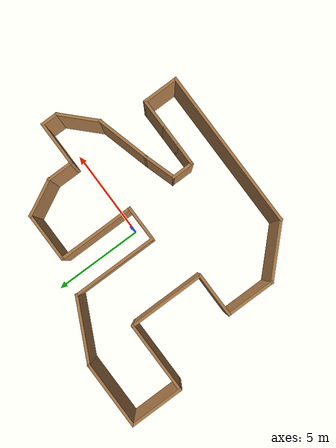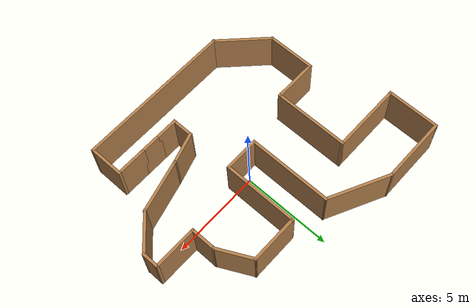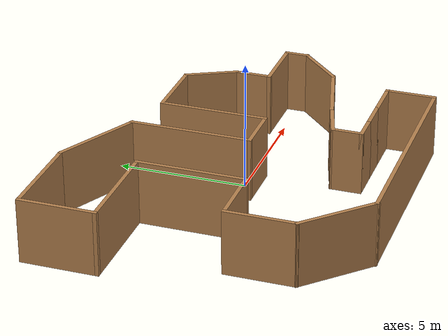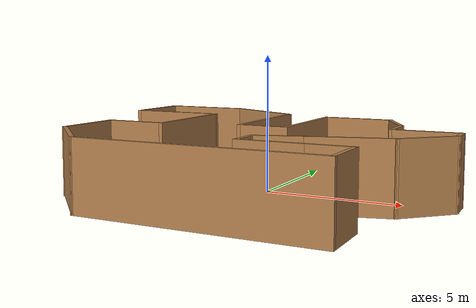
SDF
<?xml version='1.0'?>
<sdf version='1.7'>
  <model name='my_own_map_v1'>
    <pose>-0.401301 -0.201684 0 0 -0 0</pose>
    <link name='Wall_27'>
      <collision name='Wall_27_Collision'>
        <geometry>
          <box>
            <size>3 0.15 2.5</size>
          </box>
        </geometry>
        <pose>0 0 1.25 0 -0 0</pose>
      </collision>
      <visual name='Wall_27_Visual'>
        <pose>0 0 1.25 0 -0 0</pose>
        <geometry>
          <box>
            <size>3 0.15 2.5</size>
          </box>
        </geometry>
        <material>
          <script>
            <uri>file://media/materials/scripts/gazebo.material</uri>
            <name>Gazebo/Wood</name>
          </script>
          <ambient>1 1 1 1</ambient>
        </material>
        <meta>
          <layer>0</layer>
        </meta>
      </visual>
      <pose>4.25774 -2.0495 0 0 -0 0.261799</pose>
    </link>
    <link name='Wall_30'>
      <collision name='Wall_30_Collision'>
        <geometry>
          <box>
            <size>1 0.15 2.5</size>
          </box>
        </geometry>
        <pose>0 0 1.25 0 -0 0</pose>
      </collision>
      <visual name='Wall_30_Visual'>
        <pose>0 0 1.25 0 -0 0</pose>
        <geometry>
          <box>
            <size>1 0.15 2.5</size>
          </box>
        </geometry>
        <material>
          <script>
            <uri>file://media/materials/scripts/gazebo.material</uri>
            <name>Gazebo/Wood</name>
          </script>
          <ambient>1 1 1 1</ambient>
        </material>
        <meta>
          <layer>0</layer>
        </meta>
      </visual>
      <pose>7.17967 0.258429 0 0 -0 1.5708</pose>
    </link>
    <link name='Wall_31'>
      <collision name='Wall_31_Collision'>
        <geometry>
          <box>
            <size>2.5 0.15 2.5</size>
          </box>
        </geometry>
        <pose>0 0 1.25 0 -0 0</pose>
      </collision>
      <visual name='Wall_31_Visual'>
        <pose>0 0 1.25 0 -0 0</pose>
        <geometry>
          <box>
            <size>2.5 0.15 2.5</size>
          </box>
        </geometry>
        <material>
          <script>
            <uri>file://media/materials/scripts/gazebo.material</uri>
            <name>Gazebo/Wood</name>
          </script>
          <ambient>1 1 1 1</ambient>
        </material>
        <meta>
          <layer>0</layer>
        </meta>
      </visual>
      <pose>6.00467 0.683429 0 0 -0 3.14159</pose>
    </link>
    <link name='Wall_33'>
      <collision name='Wall_33_Collision'>
        <geometry>
          <box>
            <size>1.5 0.15 2.5</size>
          </box>
        </geometry>
        <pose>0 0 1.25 0 -0 0</pose>
      </collision>
      <visual name='Wall_33_Visual'>
        <pose>0 0 1.25 0 -0 0</pose>
        <geometry>
          <box>
            <size>1.5 0.15 2.5</size>
          </box>
        </geometry>
        <material>
          <script>
            <uri>file://media/materials/scripts/gazebo.material</uri>
            <name>Gazebo/Wood</name>
          </script>
          <ambient>1 1 1 1</ambient>
        </material>
        <meta>
          <layer>0</layer>
        </meta>
      </visual>
      <pose>4.82967 1.35843 0 0 -0 1.5708</pose>
    </link>
    <link name='Wall_41'>
      <collision name='Wall_41_Collision'>
        <geometry>
          <box>
            <size>1.25 0.15 2.5</size>
          </box>
        </geometry>
        <pose>0 0 1.25 0 -0 0</pose>
      </collision>
      <visual name='Wall_41_Visual'>
        <pose>0 0 1.25 0 -0 0</pose>
        <geometry>
          <box>
            <size>1.25 0.15 2.5</size>
          </box>
        </geometry>
        <material>
          <script>
            <uri>file://media/materials/scripts/gazebo.material</uri>
            <name>Gazebo/Wood</name>
          </script>
          <ambient>1 1 1 1</ambient>
        </material>
        <meta>
          <layer>0</layer>
        </meta>
      </visual>
      <pose>1.2813 -3.46832 0 0 -0 -1.5708</pose>
    </link>
    <link name='Wall_42'>
      <collision name='Wall_42_Collision'>
        <geometry>
          <box>
            <size>1.25 0.15 2.5</size>
          </box>
        </geometry>
        <pose>0 0 1.25 0 -0 0</pose>
      </collision>
      <visual name='Wall_42_Visual'>
        <pose>0 0 1.25 0 -0 0</pose>
        <geometry>
          <box>
            <size>1.25 0.15 2.5</size>
          </box>
        </geometry>
        <material>
          <script>
            <uri>file://media/materials/scripts/gazebo.material</uri>
            <name>Gazebo/Wood</name>
          </script>
          <ambient>1 1 1 1</ambient>
        </material>
        <meta>
          <layer>0</layer>
        </meta>
      </visual>
      <pose>1.8313 -4.01832 0 0 -0 0</pose>
    </link>
    <link name='Wall_43'>
      <collision name='Wall_43_Collision'>
        <geometry>
          <box>
            <size>1.25 0.15 2.5</size>
          </box>
        </geometry>
        <pose>0 0 1.25 0 -0 0</pose>
      </collision>
      <visual name='Wall_43_Visual'>
        <pose>0 0 1.25 0 -0 0</pose>
        <geometry>
          <box>
            <size>1.25 0.15 2.5</size>
          </box>
        </geometry>
        <material>
          <script>
            <uri>file://media/materials/scripts/gazebo.material</uri>
            <name>Gazebo/Wood</name>
          </script>
          <ambient>1 1 1 1</ambient>
        </material>
        <meta>
          <layer>0</layer>
        </meta>
      </visual>
      <pose>2.9313 -4.01832 0 0 -0 0</pose>
    </link>
    <link name='Wall_44'>
      <collision name='Wall_44_Collision'>
        <geometry>
          <box>
            <size>1.75 0.15 2.5</size>
          </box>
        </geometry>
        <pose>0 0 1.25 0 -0 0</pose>
      </collision>
      <visual name='Wall_44_Visual'>
        <pose>0 0 1.25 0 -0 0</pose>
        <geometry>
          <box>
            <size>1.75 0.15 2.5</size>
          </box>
        </geometry>
        <material>
          <script>
            <uri>file://media/materials/scripts/gazebo.material</uri>
            <name>Gazebo/Wood</name>
          </script>
          <ambient>1 1 1 1</ambient>
        </material>
        <meta>
          <layer>0</layer>
        </meta>
      </visual>
      <pose>4.2813 -4.01832 0 0 -0 0</pose>
    </link>
    <link name='Wall_45'>
      <collision name='Wall_45_Collision'>
        <geometry>
          <box>
            <size>2 0.15 2.5</size>
          </box>
        </geometry>
        <pose>0 0 1.25 0 -0 0</pose>
      </collision>
      <visual name='Wall_45_Visual'>
        <pose>0 0 1.25 0 -0 0</pose>
        <geometry>
          <box>
            <size>2 0.15 2.5</size>
          </box>
        </geometry>
        <material>
          <script>
            <uri>file://media/materials/scripts/gazebo.material</uri>
            <name>Gazebo/Wood</name>
          </script>
          <ambient>1 1 1 1</ambient>
        </material>
        <meta>
          <layer>0</layer>
        </meta>
      </visual>
      <pose>5.0813 -4.94332 0 0 -0 -1.5708</pose>
    </link>
    <link name='Wall_46'>
      <collision name='Wall_46_Collision'>
        <geometry>
          <box>
            <size>8.75 0.15 2.5</size>
          </box>
        </geometry>
        <pose>0 0 1.25 0 -0 0</pose>
      </collision>
      <visual name='Wall_46_Visual'>
        <pose>0 0 1.25 0 -0 0</pose>
        <geometry>
          <box>
            <size>8.75 0.15 2.5</size>
          </box>
        </geometry>
        <material>
          <script>
            <uri>file://media/materials/scripts/gazebo.material</uri>
            <name>Gazebo/Wood</name>
          </script>
          <ambient>1 1 1 1</ambient>
        </material>
        <meta>
          <layer>0</layer>
        </meta>
      </visual>
      <pose>0.781301 -5.86832 0 0 -0 3.14159</pose>
    </link>
    <link name='Wall_47'>
      <collision name='Wall_47_Collision'>
        <geometry>
          <box>
            <size>3.25 0.15 2.5</size>
          </box>
        </geometry>
        <pose>0 0 1.25 0 -0 0</pose>
      </collision>
      <visual name='Wall_47_Visual'>
        <pose>0 0 1.25 0 -0 0</pose>
        <geometry>
          <box>
            <size>3.25 0.15 2.5</size>
          </box>
        </geometry>
        <material>
          <script>
            <uri>file://media/materials/scripts/gazebo.material</uri>
            <name>Gazebo/Wood</name>
          </script>
          <ambient>1 1 1 1</ambient>
        </material>
        <meta>
          <layer>0</layer>
        </meta>
      </visual>
      <pose>-4.61472 -4.7723 0 0 -0 2.35619</pose>
    </link>
    <link name='Wall_48'>
      <collision name='Wall_48_Collision'>
        <geometry>
          <box>
            <size>2.75 0.15 2.5</size>
          </box>
        </geometry>
        <pose>0 0 1.25 0 -0 0</pose>
      </collision>
      <visual name='Wall_48_Visual'>
        <pose>0 0 1.25 0 -0 0</pose>
        <geometry>
          <box>
            <size>2.75 0.15 2.5</size>
          </box>
        </geometry>
        <material>
          <script>
            <uri>file://media/materials/scripts/gazebo.material</uri>
            <name>Gazebo/Wood</name>
          </script>
          <ambient>1 1 1 1</ambient>
        </material>
        <meta>
          <layer>0</layer>
        </meta>
      </visual>
      <pose>-5.71073 -2.37629 0 0 -0 1.5708</pose>
    </link>
    <link name='Wall_49'>
      <collision name='Wall_49_Collision'>
        <geometry>
          <box>
            <size>2.5 0.15 2.5</size>
          </box>
        </geometry>
        <pose>0 0 1.25 0 -0 0</pose>
      </collision>
      <visual name='Wall_49_Visual'>
        <pose>0 0 1.25 0 -0 0</pose>
        <geometry>
          <box>
            <size>2.5 0.15 2.5</size>
          </box>
        </geometry>
        <material>
          <script>
            <uri>file://media/materials/scripts/gazebo.material</uri>
            <name>Gazebo/Wood</name>
          </script>
          <ambient>1 1 1 1</ambient>
        </material>
        <meta>
          <layer>0</layer>
        </meta>
      </visual>
      <pose>-4.53573 -1.07628 0 0 -0 0</pose>
    </link>
    <link name='Wall_51'>
      <collision name='Wall_51_Collision'>
        <geometry>
          <box>
            <size>4.25 0.15 2.5</size>
          </box>
        </geometry>
        <pose>0 0 1.25 0 -0 0</pose>
      </collision>
      <visual name='Wall_51_Visual'>
        <pose>0 0 1.25 0 -0 0</pose>
        <geometry>
          <box>
            <size>4.25 0.15 2.5</size>
          </box>
        </geometry>
        <material>
          <script>
            <uri>file://media/materials/scripts/gazebo.material</uri>
            <name>Gazebo/Wood</name>
          </script>
          <ambient>1 1 1 1</ambient>
        </material>
        <meta>
          <layer>0</layer>
        </meta>
      </visual>
      <pose>-3.36073 0.973715 0 0 -0 1.5708</pose>
    </link>
    <link name='Wall_54'>
      <collision name='Wall_54_Collision'>
        <geometry>
          <box>
            <size>4.25 0.15 2.5</size>
          </box>
        </geometry>
        <pose>0 0 1.25 0 -0 0</pose>
      </collision>
      <visual name='Wall_54_Visual'>
        <pose>0 0 1.25 0 -0 0</pose>
        <geometry>
          <box>
            <size>4.25 0.15 2.5</size>
          </box>
        </geometry>
        <material>
          <script>
            <uri>file://media/materials/scripts/gazebo.material</uri>
            <name>Gazebo/Wood</name>
          </script>
          <ambient>1 1 1 1</ambient>
        </material>
        <meta>
          <layer>0</layer>
        </meta>
      </visual>
      <pose>1.32967 1.77343 0 0 -0 1.5708</pose>
    </link>
    <link name='Wall_57'>
      <collision name='Wall_57_Collision'>
        <geometry>
          <box>
            <size>2 0.15 2.5</size>
          </box>
        </geometry>
        <pose>0 0 1.25 0 -0 0</pose>
      </collision>
      <visual name='Wall_57_Visual'>
        <pose>0 0 1.25 0 -0 0</pose>
        <geometry>
          <box>
            <size>2 0.15 2.5</size>
          </box>
        </geometry>
        <material>
          <script>
            <uri>file://media/materials/scripts/gazebo.material</uri>
            <name>Gazebo/Wood</name>
          </script>
          <ambient>1 1 1 1</ambient>
        </material>
        <meta>
          <layer>0</layer>
        </meta>
      </visual>
      <pose>0.404671 -0.276571 0 0 -0 3.14159</pose>
    </link>
    <link name='Wall_60'>
      <collision name='Wall_60_Collision'>
        <geometry>
          <box>
            <size>4.75 0.15 2.5</size>
          </box>
        </geometry>
        <pose>0 0 1.25 0 -0 0</pose>
      </collision>
      <visual name='Wall_60_Visual'>
        <pose>0 0 1.25 0 -0 0</pose>
        <geometry>
          <box>
            <size>4.75 0.15 2.5</size>
          </box>
        </geometry>
        <material>
          <script>
            <uri>file://media/materials/scripts/gazebo.material</uri>
            <name>Gazebo/Wood</name>
          </script>
          <ambient>1 1 1 1</ambient>
        </material>
        <meta>
          <layer>0</layer>
        </meta>
      </visual>
      <pose>-0.520329 2.02343 0 0 -0 1.5708</pose>
    </link>
    <link name='Wall_62'>
      <collision name='Wall_62_Collision'>
        <geometry>
          <box>
            <size>2.75 0.15 2.5</size>
          </box>
        </geometry>
        <pose>0 0 1.25 0 -0 0</pose>
      </collision>
      <visual name='Wall_62_Visual'>
        <pose>0 0 1.25 0 -0 0</pose>
        <geometry>
          <box>
            <size>2.75 0.15 2.5</size>
          </box>
        </geometry>
        <material>
          <script>
            <uri>file://media/materials/scripts/gazebo.material</uri>
            <name>Gazebo/Wood</name>
          </script>
          <ambient>1 1 1 1</ambient>
        </material>
        <meta>
          <layer>0</layer>
        </meta>
      </visual>
      <pose>2.62967 3.82343 0 0 -0 0</pose>
    </link>
    <link name='Wall_63'>
      <collision name='Wall_63_Collision'>
        <geometry>
          <box>
            <size>2.15352 0.15 2.5</size>
          </box>
        </geometry>
        <pose>0 0 1.25 0 -0 0</pose>
      </collision>
      <visual name='Wall_63_Visual'>
        <pose>0 0 1.25 0 -0 0</pose>
        <geometry>
          <box>
            <size>2.15352 0.15 2.5</size>
          </box>
        </geometry>
        <material>
          <script>
            <uri>file://media/materials/scripts/gazebo.material</uri>
            <name>Gazebo/Wood</name>
          </script>
          <ambient>1 1 1 1</ambient>
        </material>
        <meta>
          <layer>0</layer>
        </meta>
      </visual>
      <pose>4.37967 2.92843 0 0 -0 -1.10492</pose>
    </link>
    <link name='Wall_65'>
      <collision name='Wall_65_Collision'>
        <geometry>
          <box>
            <size>1.82631 0.15 2.5</size>
          </box>
        </geometry>
        <pose>0 0 1.25 0 -0 0</pose>
      </collision>
      <visual name='Wall_65_Visual'>
        <pose>0 0 1.25 0 -0 0</pose>
        <geometry>
          <box>
            <size>1.82631 0.15 2.5</size>
          </box>
        </geometry>
        <material>
          <script>
            <uri>file://media/materials/scripts/gazebo.material</uri>
            <name>Gazebo/Wood</name>
          </script>
          <ambient>1 1 1 1</ambient>
        </material>
        <meta>
          <layer>0</layer>
        </meta>
      </visual>
      <pose>2.0813 -2.66832 0 0 -0 0.302885</pose>
    </link>
    <link name='Wall_67'>
      <collision name='Wall_67_Collision'>
        <geometry>
          <box>
            <size>4 0.15 2.5</size>
          </box>
        </geometry>
        <pose>0 0 1.25 0 -0 0</pose>
      </collision>
      <visual name='Wall_67_Visual'>
        <pose>0 0 1.25 0 -0 0</pose>
        <geometry>
          <box>
            <size>4 0.15 2.5</size>
          </box>
        </geometry>
        <material>
          <script>
            <uri>file://media/materials/scripts/gazebo.material</uri>
            <name>Gazebo/Wood</name>
          </script>
          <ambient>1 1 1 1</ambient>
        </material>
        <meta>
          <layer>0</layer>
        </meta>
      </visual>
      <pose>-5.28573 3.02372 0 0 -0 3.14159</pose>
    </link>
    <link name='Wall_68'>
      <collision name='Wall_68_Collision'>
        <geometry>
          <box>
            <size>3 0.15 2.5</size>
          </box>
        </geometry>
        <pose>0 0 1.25 0 -0 0</pose>
      </collision>
      <visual name='Wall_68_Visual'>
        <pose>0 0 1.25 0 -0 0</pose>
        <geometry>
          <box>
            <size>3 0.15 2.5</size>
          </box>
        </geometry>
        <material>
          <script>
            <uri>file://media/materials/scripts/gazebo.material</uri>
            <name>Gazebo/Wood</name>
          </script>
          <ambient>1 1 1 1</ambient>
        </material>
        <meta>
          <layer>0</layer>
        </meta>
      </visual>
      <pose>-7.21073 4.44871 0 0 -0 1.5708</pose>
    </link>
    <link name='Wall_69'>
      <collision name='Wall_69_Collision'>
        <geometry>
          <box>
            <size>3.75 0.15 2.5</size>
          </box>
        </geometry>
        <pose>0 0 1.25 0 -0 0</pose>
      </collision>
      <visual name='Wall_69_Visual'>
        <pose>0 0 1.25 0 -0 0</pose>
        <geometry>
          <box>
            <size>3.75 0.15 2.5</size>
          </box>
        </geometry>
        <material>
          <script>
            <uri>file://media/materials/scripts/gazebo.material</uri>
            <name>Gazebo/Wood</name>
          </script>
          <ambient>1 1 1 1</ambient>
        </material>
        <meta>
          <layer>0</layer>
        </meta>
      </visual>
      <pose>-5.41073 5.87371 0 0 -0 0</pose>
    </link>
    <link name='Wall_70'>
      <collision name='Wall_70_Collision'>
        <geometry>
          <box>
            <size>3.60745 0.15 2.5</size>
          </box>
        </geometry>
        <pose>0 0 1.25 0 -0 0</pose>
      </collision>
      <visual name='Wall_70_Visual'>
        <pose>0 0 1.25 0 -0 0</pose>
        <geometry>
          <box>
            <size>3.60745 0.15 2.5</size>
          </box>
        </geometry>
        <material>
          <script>
            <uri>file://media/materials/scripts/gazebo.material</uri>
            <name>Gazebo/Wood</name>
          </script>
          <ambient>1 1 1 1</ambient>
        </material>
        <meta>
          <layer>0</layer>
        </meta>
      </visual>
      <pose>-2.06553 5.09857 0 0 -0 -0.464963</pose>
    </link>
    <link name='Wall_72'>
      <collision name='Wall_72_Collision'>
        <geometry>
          <box>
            <size>2.31357 0.15 2.5</size>
          </box>
        </geometry>
        <pose>0 0 1.25 0 -0 0</pose>
      </collision>
      <visual name='Wall_72_Visual'>
        <pose>0 0 1.25 0 -0 0</pose>
        <geometry>
          <box>
            <size>2.31357 0.15 2.5</size>
          </box>
        </geometry>
        <material>
          <script>
            <uri>file://media/materials/scripts/gazebo.material</uri>
            <name>Gazebo/Wood</name>
          </script>
          <ambient>1 1 1 1</ambient>
        </material>
        <meta>
          <layer>0</layer>
        </meta>
      </visual>
      <pose>6.40693 -0.923627 0 0 -0 -2.36645</pose>
    </link>
    <static>1</static>
  </model>
</sdf>
